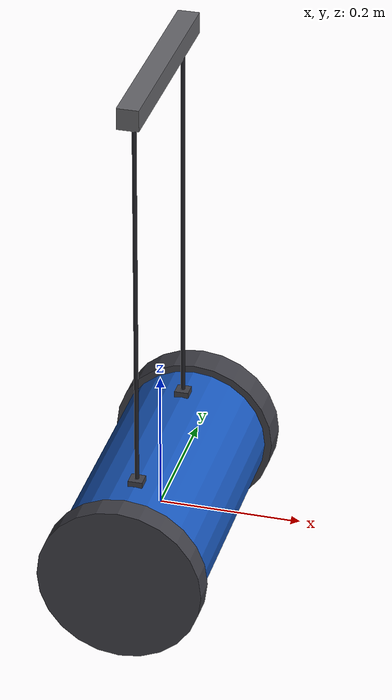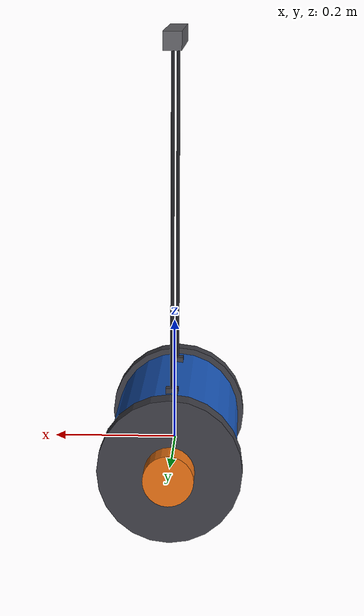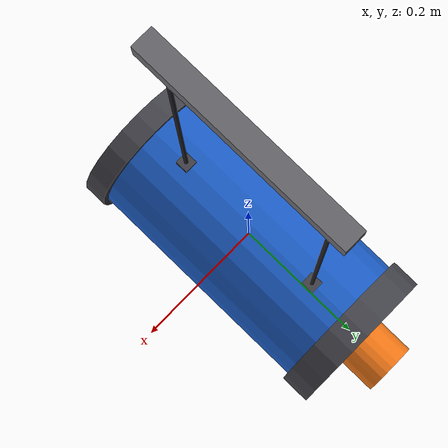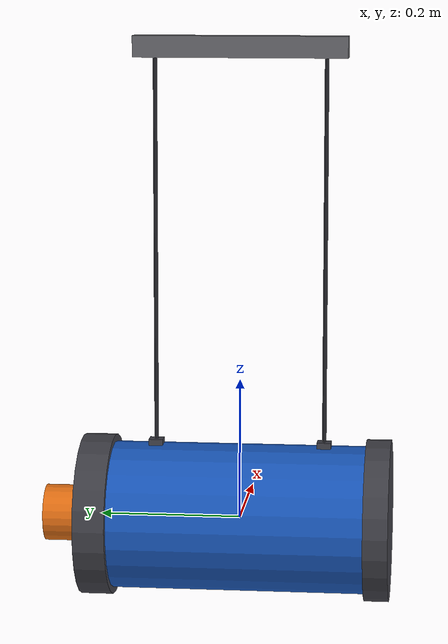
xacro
<?xml version="1.0"?>
<robot name="simple_hanging_workpiece" xmlns:xacro="http://ros.org/wiki/xacro">

  <xacro:arg name="object_type" default="motor_housing_cylinder"/>
  <xacro:property name="type" value="$(arg object_type)"/>

  <!-- ===== 材质 ===== -->
  <material name="body_blue">
    <color rgba="0.10 0.35 0.75 1"/>
  </material>
  <material name="accent_orange">
    <color rgba="0.92 0.45 0.08 1"/>
  </material>
  <material name="endcap_dark_gray">
    <color rgba="0.25 0.25 0.28 1"/>
  </material>
  <material name="cable_black">
    <color rgba="0.12 0.12 0.14 1"/>
  </material>
  <material name="bar_gray">
    <color rgba="0.40 0.40 0.42 1"/>
  </material>

  <!-- ===== 公共吊具结构（两种工件共用） ===== -->

  <!-- 顶部横杆 (spreader bar) -->
  <!-- 位于工件上方约 0.67m，搭在门架顶梁上 -->
  <xacro:property name="spreader_z" value="0.67"/>
  <xacro:property name="spreader_half_y" value="0.15"/>
  <xacro:property name="cable_radius" value="0.003"/>
  <!-- 吊索在工件上的挂点 Y 坐标 -->
  <xacro:property name="hanger_y" value="0.12"/>

  <!-- object_frame: 工件坐标系原点，位于工件几何中心 -->
  <link name="object_frame"/>

  <!-- surface_frame_front: 朝向 CR5（-X 方向）的主喷涂面 -->
  <link name="surface_frame_front"/>
  <joint name="object_to_surface_frame" type="fixed">
    <parent link="object_frame"/>
    <child link="surface_frame_front"/>
    <!-- +Z 指向 CR5 (-X world)，位于工件正面 -->
    <origin xyz="0 0 0" rpy="0 1.5708 0"/>
  </joint>

  <xacro:if value="${type == 'motor_housing_cylinder'}">

    <xacro:property name="body_radius" value="0.105"/>
    <xacro:property name="body_len_y" value="0.36"/>
    <xacro:property name="left_cap_len" value="0.035"/>
    <xacro:property name="left_cap_r" value="0.115"/>
    <xacro:property name="right_cap_len" value="0.045"/>
    <xacro:property name="right_cap_r" value="0.115"/>
    <xacro:property name="shaft_len" value="0.055"/>
    <xacro:property name="shaft_r" value="0.040"/>

    <!-- 端盖 Y 位置 -->
    <xacro:property name="left_cap_y" value="-0.1975"/>
    <xacro:property name="right_cap_y" value="0.2025"/>
    <xacro:property name="shaft_y" value="0.2525"/>

    <!-- 吊耳位置：主体圆柱顶部表面 -->
    <xacro:property name="lug_z" value="0.105"/>

    <link name="workpiece_body">
      <inertial>
        <mass value="2.5"/>
        <inertia ixx="0.03" ixy="0" ixz="0" iyy="0.015" iyz="0" izz="0.03"/>
      </inertial>

      <!-- 主体圆柱 (沿 Y 轴) -->
      <visual name="body_cylinder">
        <origin xyz="0 0 0" rpy="1.5708 0 0"/>
        <geometry><cylinder radius="${body_radius}" length="${body_len_y}"/></geometry>
        <material name="body_blue"/>
      </visual>
      <collision name="body_col">
        <origin xyz="0 0 0" rpy="1.5708 0 0"/>
        <geometry><cylinder radius="${body_radius}" length="${body_len_y}"/></geometry>
      </collision>

      <!-- 左端盖 (深灰) -->
      <visual name="left_end_cap">
        <origin xyz="0 ${left_cap_y} 0" rpy="1.5708 0 0"/>
        <geometry><cylinder radius="${left_cap_r}" length="${left_cap_len}"/></geometry>
        <material name="endcap_dark_gray"/>
      </visual>
      <collision name="left_cap_col">
        <origin xyz="0 ${left_cap_y} 0" rpy="1.5708 0 0"/>
        <geometry><cylinder radius="${left_cap_r}" length="${left_cap_len}"/></geometry>
      </collision>

      <!-- 右端盖 (深灰, 比左边稍长) -->
      <visual name="right_end_cap">
        <origin xyz="0 ${right_cap_y} 0" rpy="1.5708 0 0"/>
        <geometry><cylinder radius="${right_cap_r}" length="${right_cap_len}"/></geometry>
        <material name="endcap_dark_gray"/>
      </visual>
      <collision name="right_cap_col">
        <origin xyz="0 ${right_cap_y} 0" rpy="1.5708 0 0"/>
        <geometry><cylinder radius="${right_cap_r}" length="${right_cap_len}"/></geometry>
      </collision>

      <!-- 短轴/法兰 (橙色, 右侧) -->
      <visual name="shaft">
        <origin xyz="0 ${shaft_y} 0" rpy="1.5708 0 0"/>
        <geometry><cylinder radius="${shaft_r}" length="${shaft_len}"/></geometry>
        <material name="accent_orange"/>
      </visual>
      <collision name="shaft_col">
        <origin xyz="0 ${shaft_y} 0" rpy="1.5708 0 0"/>
        <geometry><cylinder radius="${shaft_r}" length="${shaft_len}"/></geometry>
      </collision>

      <!-- 左吊耳 (深灰小方块, 主体顶部) -->
      <visual name="left_lug">
        <origin xyz="0 ${-hanger_y} ${lug_z}" rpy="0 0 0"/>
        <geometry><box size="0.02 0.02 0.015"/></geometry>
        <material name="endcap_dark_gray"/>
      </visual>

      <!-- 右吊耳 -->
      <visual name="right_lug">
        <origin xyz="0 ${hanger_y} ${lug_z}" rpy="0 0 0"/>
        <geometry><box size="0.02 0.02 0.015"/></geometry>
        <material name="endcap_dark_gray"/>
      </visual>

      <!-- 吊索挂点 Z -->
      <xacro:property name="cable_bottom_z" value="${lug_z + 0.008}"/>
    </link>

  </xacro:if>

  <!-- ================================================================
       rectangular_housing: 矩形箱体
       ================================================================ -->
  <xacro:if value="${type == 'rectangular_housing'}">

    <xacro:property name="main_sx" value="0.18"/>
    <xacro:property name="main_sy" value="0.36"/>
    <xacro:property name="main_sz" value="0.26"/>
    <xacro:property name="top_sx" value="0.10"/>
    <xacro:property name="top_sy" value="0.12"/>
    <xacro:property name="top_sz" value="0.07"/>
    <xacro:property name="top_off_y" value="0.07"/>
    <xacro:property name="top_off_z" value="0.165"/>

    <!-- 吊耳位置：主箱体顶部表面 -->
    <xacro:property name="lug_z" value="0.13"/>
    <xacro:property name="cable_bottom_z" value="${lug_z + 0.008}"/>

    <link name="workpiece_body">
      <inertial>
        <mass value="3.0"/>
        <inertia ixx="0.04" ixy="0" ixz="0" iyy="0.03" iyz="0" izz="0.04"/>
      </inertial>

      <!-- 主箱体 (蓝色) -->
      <visual name="main_box">
        <origin xyz="0 0 0" rpy="0 0 0"/>
        <geometry><box size="${main_sx} ${main_sy} ${main_sz}"/></geometry>
        <material name="body_blue"/>
      </visual>
      <collision name="main_box_col">
        <origin xyz="0 0 0" rpy="0 0 0"/>
        <geometry><box size="${main_sx} ${main_sy} ${main_sz}"/></geometry>
      </collision>

      <!-- 顶部接线盒 (橙色, 偏右侧) -->
      <visual name="top_box">
        <origin xyz="0 ${top_off_y} ${top_off_z}" rpy="0 0 0"/>
        <geometry><box size="${top_sx} ${top_sy} ${top_sz}"/></geometry>
        <material name="accent_orange"/>
      </visual>
      <collision name="top_box_col">
        <origin xyz="0 ${top_off_y} ${top_off_z}" rpy="0 0 0"/>
        <geometry><box size="${top_sx} ${top_sy} ${top_sz}"/></geometry>
      </collision>

      <!-- 左吊耳 (深灰小方块, 主箱体顶部) -->
      <visual name="left_lug">
        <origin xyz="0 ${-hanger_y} ${lug_z}" rpy="0 0 0"/>
        <geometry><box size="0.02 0.02 0.015"/></geometry>
        <material name="endcap_dark_gray"/>
      </visual>

      <!-- 右吊耳 -->
      <visual name="right_lug">
        <origin xyz="0 ${hanger_y} ${lug_z}" rpy="0 0 0"/>
        <geometry><box size="0.02 0.02 0.015"/></geometry>
        <material name="endcap_dark_gray"/>
      </visual>
    </link>

  </xacro:if>

  <!-- ===== object_frame → workpiece_body ===== -->
  <joint name="object_to_body" type="fixed">
    <parent link="object_frame"/>
    <child link="workpiece_body"/>
  </joint>

  <!-- ===== 吊索 (cables) ===== -->
  <!-- 左吊索: 从工件左吊耳到顶部横杆左端 -->
  <xacro:property name="cable_len" value="${spreader_z - cable_bottom_z}"/>
  <xacro:property name="cable_mid_z" value="${(spreader_z + cable_bottom_z) / 2}"/>

  <link name="left_cable">
    <inertial>
      <mass value="0.05"/>
      <inertia ixx="0.0001" ixy="0" ixz="0" iyy="0.0001" iyz="0" izz="0.00001"/>
    </inertial>
    <visual name="left_cable_vis">
      <origin xyz="0 ${-hanger_y} ${cable_mid_z}" rpy="0 0 0"/>
      <geometry><cylinder radius="${cable_radius}" length="${cable_len}"/></geometry>
      <material name="cable_black"/>
    </visual>
  </link>
  <joint name="object_to_left_cable" type="fixed">
    <parent link="object_frame"/>
    <child link="left_cable"/>
  </joint>

  <!-- 右吊索 -->
  <link name="right_cable">
    <inertial>
      <mass value="0.05"/>
      <inertia ixx="0.0001" ixy="0" ixz="0" iyy="0.0001" iyz="0" izz="0.00001"/>
    </inertial>
    <visual name="right_cable_vis">
      <origin xyz="0 ${hanger_y} ${cable_mid_z}" rpy="0 0 0"/>
      <geometry><cylinder radius="${cable_radius}" length="${cable_len}"/></geometry>
      <material name="cable_black"/>
    </visual>
  </link>
  <joint name="object_to_right_cable" type="fixed">
    <parent link="object_frame"/>
    <child link="right_cable"/>
  </joint>

  <!-- ===== 顶部横杆 (spreader bar) ===== -->
  <!-- 搭在门架顶梁上, 水平方向沿 Y -->
  <link name="spreader_bar">
    <inertial>
      <mass value="1.0"/>
      <inertia ixx="0.008" ixy="0" ixz="0" iyy="0.002" iyz="0" izz="0.008"/>
    </inertial>
    <visual name="bar_vis">
      <origin xyz="0 0 ${spreader_z}" rpy="0 0 0"/>
      <geometry><box size="0.03 0.30 0.03"/></geometry>
      <material name="bar_gray"/>
    </visual>
    <collision name="bar_col">
      <origin xyz="0 0 ${spreader_z}" rpy="0 0 0"/>
      <geometry><box size="0.03 0.30 0.03"/></geometry>
    </collision>
  </link>
  <joint name="object_to_spreader" type="fixed">
    <parent link="object_frame"/>
    <child link="spreader_bar"/>
  </joint>

  <!-- ===== Gazebo 配置 ===== -->
  <gazebo><static>true</static></gazebo>

</robot>
